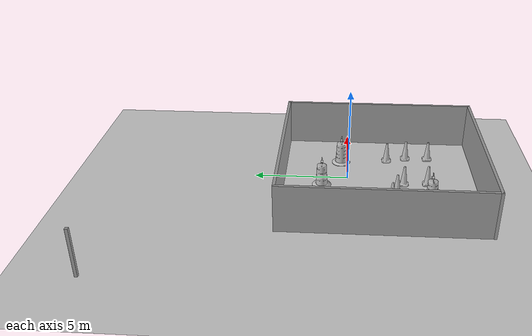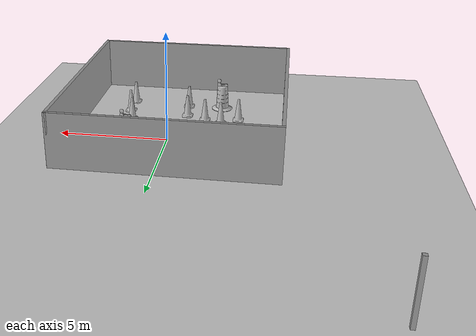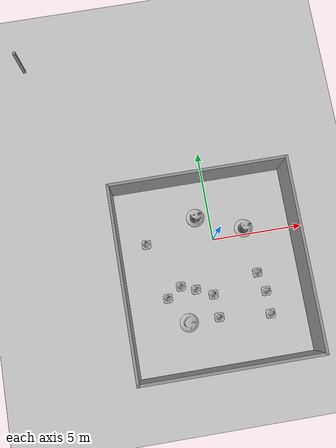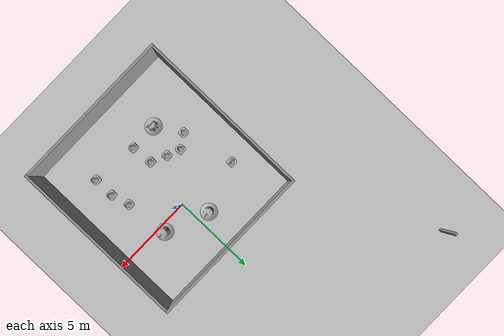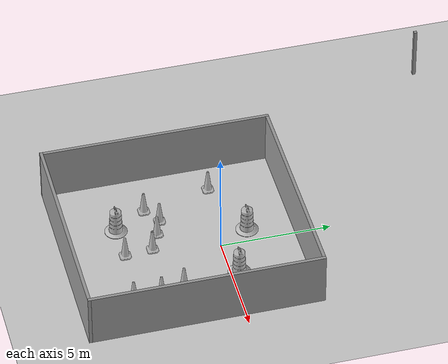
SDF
<sdf version="1.7">
 <world name="default">
  <light name="sun" type="directional">
   <pose>0 0 10 0 -0 0</pose>
   <diffuse>0.8 0.8 0.8 1</diffuse>
   <specular>0.2 0.2 0.2 1</specular>
   <attenuation>
    <range>1000</range>
    <constant>0.9</constant>
    <linear>0.01</linear>
    <quadratic>0.001</quadratic>
   </attenuation>
   <direction>-0.5 0.1 -0.9</direction>
   <spot><inner_angle>0</inner_angle><outer_angle>0</outer_angle><falloff>0</falloff></spot>
  </light>
  <model name="ground_plane">
   <static>1</static>
   <link name="link">
    <collision name="collision">
     <geometry><plane><normal>0 0 1</normal><size>100 100</size></plane></geometry>
     <surface>
      <contact><collide_bitmask>65535</collide_bitmask></contact>
      <friction><ode><mu>100</mu><mu2>50</mu2></ode></friction>
     </surface>
    </collision>
    <visual name="visual">
     <cast_shadows>0</cast_shadows>
     <geometry><plane><normal>0 0 1</normal><size>100 100</size></plane></geometry>
     <material>
      <script><uri>file://media/materials/scripts/gazebo.material</uri><name>Gazebo/Grey</name></script>
     </material>
    </visual>
   </link>
  </model>
  <gravity>0 0 -9.8</gravity>
  <magnetic_field>6e-06 2.3e-05 -4.2e-05</magnetic_field>
  <atmosphere type="adiabatic"/>
  <physics type="ode">
   <max_step_size>0.001</max_step_size>
   <real_time_factor>1</real_time_factor>
   <real_time_update_rate>1000</real_time_update_rate>
  </physics>
  <scene><ambient>0.4 0.4 0.4 1</ambient><background>0.7 0.7 0.7 1</background><shadows>1</shadows></scene>
  <spherical_coordinates>
   <surface_model>EARTH_WGS84</surface_model>
   <latitude_deg>0</latitude_deg>
   <longitude_deg>0</longitude_deg>
   <elevation>0</elevation>
   <heading_deg>0</heading_deg>
  </spherical_coordinates>
  <model name="Construction Barrel">
   <link name="link">
    <inertial>
     <pose>0 0 0.4 0 -0 0</pose>
     <mass>500</mass>
     <inertia><ixx>51.2096</ixx><iyy>51.2096</iyy><izz>25</izz><ixy>0</ixy><ixz>0</ixz><iyz>0</iyz></inertia>
    </inertial>
    <collision name="collision">
     <geometry><mesh><uri>model://construction_barrel/meshes/construction_barrel.dae</uri></mesh></geometry>
    </collision>
    <visual name="visual">
     <geometry><mesh><uri>model://construction_barrel/meshes/construction_barrel.dae</uri></mesh></geometry>
    </visual>
   </link>
   <pose>-0.756325 1.39223 0 0 0 -3.1e-05</pose>
  </model>
  <model name="Construction Barrel_0">
   <link name="link">
    <inertial>
     <pose>0 0 0.4 0 -0 0</pose>
     <mass>500</mass>
     <inertia><ixx>51.2096</ixx><iyy>51.2096</iyy><izz>25</izz><ixy>0</ixy><ixz>0</ixz><iyz>0</iyz></inertia>
    </inertial>
    <collision name="collision">
     <geometry><mesh><uri>model://construction_barrel/meshes/construction_barrel.dae</uri></mesh></geometry>
    </collision>
    <visual name="visual">
     <geometry><mesh><uri>model://construction_barrel/meshes/construction_barrel.dae</uri></mesh></geometry>
    </visual>
   </link>
   <pose>1.80012 0.377136 -2e-06 4e-06 7e-06 -2.9e-05</pose>
  </model>
  <model name="Construction Cone">
   <link name="link">
    <collision name="collision">
     <geometry>
      <mesh><scale>10 10 10</scale><uri>model://construction_cone/meshes/construction_cone.dae</uri></mesh>
     </geometry>
    </collision>
    <visual name="visual">
     <geometry>
      <mesh><scale>10 10 10</scale><uri>model://construction_cone/meshes/construction_cone.dae</uri></mesh>
     </geometry>
    </visual>
    <inertial>
     <inertia><ixx>1</ixx><ixy>0</ixy><ixz>0</ixz><iyy>1</iyy><iyz>0</iyz><izz>1</izz></inertia>
     <mass>1</mass>
    </inertial>
   </link>
   <pose>-2.19745 -2.25046 0 -0 -0 -0</pose>
  </model>
  <model name="Construction Cone_0">
   <link name="link">
    <collision name="collision">
     <geometry>
      <mesh><scale>10 10 10</scale><uri>model://construction_cone/meshes/construction_cone.dae</uri></mesh>
     </geometry>
    </collision>
    <visual name="visual">
     <geometry>
      <mesh><scale>10 10 10</scale><uri>model://construction_cone/meshes/construction_cone.dae</uri></mesh>
     </geometry>
    </visual>
    <inertial>
     <inertia><ixx>1</ixx><ixy>0</ixy><ixz>0</ixz><iyy>1</iyy><iyz>0</iyz><izz>1</izz></inertia>
     <mass>1</mass>
    </inertial>
   </link>
   <pose>-1.40494 -2.55135 0 -0 -0 -0</pose>
  </model>
  <model name="Construction Cone_1">
   <link name="link">
    <collision name="collision">
     <geometry>
      <mesh><scale>10 10 10</scale><uri>model://construction_cone/meshes/construction_cone.dae</uri></mesh>
     </geometry>
    </collision>
    <visual name="visual">
     <geometry>
      <mesh><scale>10 10 10</scale><uri>model://construction_cone/meshes/construction_cone.dae</uri></mesh>
     </geometry>
    </visual>
    <inertial>
     <inertia><ixx>1</ixx><ixy>0</ixy><ixz>0</ixz><iyy>1</iyy><iyz>0</iyz><izz>1</izz></inertia>
     <mass>1</mass>
    </inertial>
   </link>
   <pose>-0.501986 -2.9745 -0 0 -0 0</pose>
  </model>
  <model name="Construction Cone_2">
   <link name="link">
    <collision name="collision">
     <geometry>
      <mesh><scale>10 10 10</scale><uri>model://construction_cone/meshes/construction_cone.dae</uri></mesh>
     </geometry>
    </collision>
    <visual name="visual">
     <geometry>
      <mesh><scale>10 10 10</scale><uri>model://construction_cone/meshes/construction_cone.dae</uri></mesh>
     </geometry>
    </visual>
    <inertial>
     <inertia><ixx>1</ixx><ixy>0</ixy><ixz>0</ixz><iyy>1</iyy><iyz>0</iyz><izz>1</izz></inertia>
     <mass>1</mass>
    </inertial>
   </link>
   <pose>2.09724 -2.18232 -0 0 -0 0</pose>
  </model>
  <model name="Construction Cone_3">
   <link name="link">
    <collision name="collision">
     <geometry>
      <mesh><scale>10 10 10</scale><uri>model://construction_cone/meshes/construction_cone.dae</uri></mesh>
     </geometry>
    </collision>
    <visual name="visual">
     <geometry>
      <mesh><scale>10 10 10</scale><uri>model://construction_cone/meshes/construction_cone.dae</uri></mesh>
     </geometry>
    </visual>
    <inertial>
     <inertia><ixx>1</ixx><ixy>0</ixy><ixz>0</ixz><iyy>1</iyy><iyz>0</iyz><izz>1</izz></inertia>
     <mass>1</mass>
    </inertial>
   </link>
   <pose>-3.69879 0.345038 -8e-06 0 1e-06 0</pose>
  </model>
  <model name="Construction Cone_4">
   <link name="link">
    <collision name="collision">
     <geometry>
      <mesh><scale>10 10 10</scale><uri>model://construction_cone/meshes/construction_cone.dae</uri></mesh>
     </geometry>
    </collision>
    <visual name="visual">
     <geometry>
      <mesh><scale>10 10 10</scale><uri>model://construction_cone/meshes/construction_cone.dae</uri></mesh>
     </geometry>
    </visual>
    <inertial>
     <inertia><ixx>1</ixx><ixy>0</ixy><ixz>0</ixz><iyy>1</iyy><iyz>0</iyz><izz>1</izz></inertia>
     <mass>1</mass>
    </inertial>
   </link>
   <pose>-0.406438 -4.23374 -0 0 -0 0</pose>
  </model>
  <model name="Construction Cone_5">
   <link name="link">
    <collision name="collision">
     <geometry>
      <mesh><scale>10 10 10</scale><uri>model://construction_cone/meshes/construction_cone.dae</uri></mesh>
     </geometry>
    </collision>
    <visual name="visual">
     <geometry>
      <mesh><scale>10 10 10</scale><uri>model://construction_cone/meshes/construction_cone.dae</uri></mesh>
     </geometry>
    </visual>
    <inertial>
     <inertia><ixx>1</ixx><ixy>0</ixy><ixz>0</ixz><iyy>1</iyy><iyz>0</iyz><izz>1</izz></inertia>
     <mass>1</mass>
    </inertial>
   </link>
   <pose>2.38815 -3.2576 -0 0 -0 0</pose>
  </model>
  <model name="Construction Cone_6">
   <link name="link">
    <collision name="collision">
     <geometry>
      <mesh><scale>10 10 10</scale><uri>model://construction_cone/meshes/construction_cone.dae</uri></mesh>
     </geometry>
    </collision>
    <visual name="visual">
     <geometry>
      <mesh><scale>10 10 10</scale><uri>model://construction_cone/meshes/construction_cone.dae</uri></mesh>
     </geometry>
    </visual>
    <inertial>
     <inertia><ixx>1</ixx><ixy>0</ixy><ixz>0</ixz><iyy>1</iyy><iyz>0</iyz><izz>1</izz></inertia>
     <mass>1</mass>
    </inertial>
   </link>
   <pose>2.39316 -4.49605 -0 0 -0 0</pose>
  </model>
  <model name="Construction Cone_7">
   <link name="link">
    <collision name="collision">
     <geometry>
      <mesh><scale>10 10 10</scale><uri>model://construction_cone/meshes/construction_cone.dae</uri></mesh>
     </geometry>
    </collision>
    <visual name="visual">
     <geometry>
      <mesh><scale>10 10 10</scale><uri>model://construction_cone/meshes/construction_cone.dae</uri></mesh>
     </geometry>
    </visual>
    <inertial>
     <inertia><ixx>1</ixx><ixy>0</ixy><ixz>0</ixz><iyy>1</iyy><iyz>0</iyz><izz>1</izz></inertia>
     <mass>1</mass>
    </inertial>
   </link>
   <pose>-3.00495 -2.78053 -0 0 -0 0</pose>
  </model>
  <model name="Construction Barrel_2">
   <link name="link">
    <inertial>
     <pose>0 0 0.4 0 -0 0</pose>
     <mass>500</mass>
     <inertia><ixx>51.2096</ixx><iyy>51.2096</iyy><izz>25</izz><ixy>0</ixy><ixz>0</ixz><iyz>0</iyz></inertia>
    </inertial>
    <collision name="collision">
     <geometry><mesh><uri>model://construction_barrel/meshes/construction_barrel.dae</uri></mesh></geometry>
    </collision>
    <visual name="visual">
     <geometry><mesh><uri>model://construction_barrel/meshes/construction_barrel.dae</uri></mesh></geometry>
    </visual>
   </link>
   <pose>-2.07698 -4.262 -1e-06 5e-06 1e-06 -1.4e-05</pose>
  </model>
  <model name="room">
   <pose>-2.37073 2.37172 0 0 -0 0</pose>
   <link name="Wall_12">
    <collision name="Wall_12_Collision">
     <geometry><box><size>0.15 0.15 2.5</size></box></geometry>
     <pose>0 0 1.25 0 -0 0</pose>
    </collision>
    <visual name="Wall_12_Visual">
     <pose>0 0 1.25 0 -0 0</pose>
     <geometry><box><size>0.15 0.15 2.5</size></box></geometry>
     <material>
      <script><uri>file://media/materials/scripts/gazebo.material</uri><name>Gazebo/Grey</name></script>
      <ambient>1 1 1 1</ambient>
     </material>
     <meta><layer>0</layer></meta>
    </visual>
    <pose>-6.77083 9.25064 0 0 -0 0</pose>
   </link>
   <link name="Wall_22">
    <collision name="Wall_22_Collision">
     <geometry><box><size>9.75 0.15 2.5</size></box></geometry>
     <pose>0 0 1.25 0 -0 0</pose>
    </collision>
    <visual name="Wall_22_Visual">
     <pose>0 0 1.25 0 -0 0</pose>
     <geometry><box><size>9.75 0.15 2.5</size></box></geometry>
     <material>
      <script><uri>file://media/materials/scripts/gazebo.material</uri><name>Gazebo/Grey</name></script>
      <ambient>1 1 1 1</ambient>
     </material>
     <meta><layer>0</layer></meta>
    </visual>
    <pose>1.97083 1.09936 0 0 -0 0</pose>
   </link>
   <link name="Wall_23">
    <collision name="Wall_23_Collision">
     <geometry><box><size>10.5 0.15 2.5</size></box></geometry>
     <pose>0 0 1.25 0 -0 0</pose>
    </collision>
    <visual name="Wall_23_Visual">
     <pose>0 0 1.25 0 -0 0</pose>
     <geometry><box><size>10.5 0.15 2.5</size></box></geometry>
     <material>
      <script><uri>file://media/materials/scripts/gazebo.material</uri><name>Gazebo/Grey</name></script>
      <ambient>1 1 1 1</ambient>
     </material>
     <meta><layer>0</layer></meta>
    </visual>
    <pose>6.77083 -4.07564 0 0 -0 -1.5708</pose>
   </link>
   <link name="Wall_24">
    <collision name="Wall_24_Collision">
     <geometry><box><size>9.75 0.15 2.5</size></box></geometry>
     <pose>0 0 1.25 0 -0 0</pose>
    </collision>
    <visual name="Wall_24_Visual">
     <pose>0 0 1.25 0 -0 0</pose>
     <geometry><box><size>9.75 0.15 2.5</size></box></geometry>
     <material>
      <script><uri>file://media/materials/scripts/gazebo.material</uri><name>Gazebo/Grey</name></script>
      <ambient>1 1 1 1</ambient>
     </material>
     <meta><layer>0</layer></meta>
    </visual>
    <pose>1.97083 -9.25064 0 0 -0 3.14159</pose>
   </link>
   <link name="Wall_25">
    <collision name="Wall_25_Collision">
     <geometry><box><size>10.5 0.15 2.5</size></box></geometry>
     <pose>0 0 1.25 0 -0 0</pose>
    </collision>
    <visual name="Wall_25_Visual">
     <pose>0 0 1.25 0 -0 0</pose>
     <geometry><box><size>10.5 0.15 2.5</size></box></geometry>
     <material>
      <script><uri>file://media/materials/scripts/gazebo.material</uri><name>Gazebo/Grey</name></script>
      <ambient>1 1 1 1</ambient>
     </material>
     <meta><layer>0</layer></meta>
    </visual>
    <pose>-2.82917 -4.07564 0 0 -0 1.5708</pose>
   </link>
   <static>1</static>
  </model>
 </world>
</sdf>
